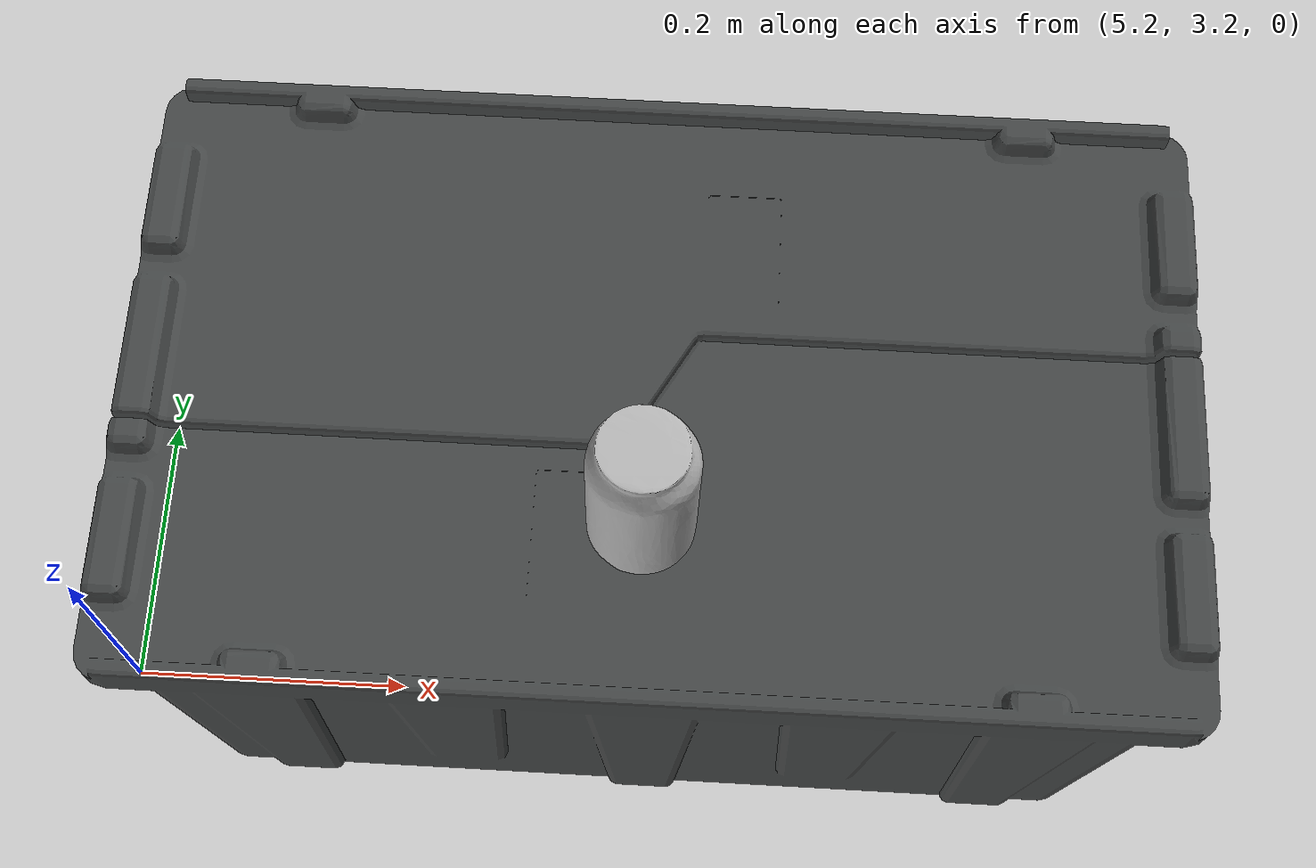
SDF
<sdf version="1.6">
 <world name="default">
  <light name="sun" type="directional">
   <pose>0 0 10 0 -0 0</pose>
   <diffuse>0.8 0.8 0.8 1</diffuse>
   <specular>0.2 0.2 0.2 1</specular>
   <attenuation>
    <range>1000</range>
    <constant>0.9</constant>
    <linear>0.01</linear>
    <quadratic>0.001</quadratic>
   </attenuation>
   <direction>-0.5 0.1 -0.9</direction>
  </light>
  <model name="ground_plane">
   <static>1</static>
   <link name="link">
    <collision name="collision">
     <geometry><plane><normal>0 0 1</normal><size>100 100</size></plane></geometry>
     <surface>
      <contact><collide_bitmask>65535</collide_bitmask></contact>
      <friction><ode><mu>100</mu><mu2>50</mu2></ode></friction>
     </surface>
    </collision>
    <visual name="visual">
     <cast_shadows>0</cast_shadows>
     <geometry><plane><normal>0 0 1</normal><size>100 100</size></plane></geometry>
     <material>
      <script><uri>file://media/materials/scripts/gazebo.material</uri><name>Gazebo/Grey</name></script>
     </material>
    </visual>
   </link>
  </model>
  <gravity>0 0 -9.8</gravity>
  <magnetic_field>6e-06 2.3e-05 -4.2e-05</magnetic_field>
  <atmosphere type="adiabatic"/>
  <physics name="default_physics" default="0" type="ode">
   <max_step_size>0.001</max_step_size>
   <real_time_factor>1</real_time_factor>
   <real_time_update_rate>1000</real_time_update_rate>
  </physics>
  <scene><ambient>0.4 0.4 0.4 1</ambient><background>0.7 0.7 0.7 1</background><shadows>1</shadows></scene>
  <audio><device>default</device></audio>
  <spherical_coordinates>
   <surface_model>EARTH_WGS84</surface_model>
   <latitude_deg>0</latitude_deg>
   <longitude_deg>0</longitude_deg>
   <elevation>0</elevation>
   <heading_deg>0</heading_deg>
  </spherical_coordinates>
  <model name="grey_tote">
   <link name="link">
    <inertial>
     <pose>0 0 0.14155 0 -0 0</pose>
     <mass>3.53802</mass>
     <inertia>
      <ixx>0.0688358</ixx>
      <ixy>0</ixy>
      <ixz>0</ixz>
      <iyy>0.139596</iyy>
      <iyz>0</iyz>
      <izz>0.155909</izz>
     </inertia>
    </inertial>
    <collision name="lid">
     <pose>0 0 0.28958 0 -0 0</pose>
     <geometry><box><size>0.67768 0.41298 0.01588</size></box></geometry>
    </collision>
    <collision name="lid_lip_1">
     <pose>0 0.20063 0.3048 0 -0 0</pose>
     <geometry><box><size>0.65068 0.0105 0.0127</size></box></geometry>
    </collision>
    <collision name="lid_lip_2">
     <pose>0 -0.20063 0.3048 0 -0 0</pose>
     <geometry><box><size>0.65068 0.0105 0.0127</size></box></geometry>
    </collision>
    <collision name="lid_lip_3">
     <pose>0.32585 0 0.3048 0 -0 0</pose>
     <geometry><box><size>0.02602 0.31202 0.0127</size></box></geometry>
    </collision>
    <collision name="lid_lip_4">
     <pose>-0.32585 0 0.3048 0 -0 0</pose>
     <geometry><box><size>0.02602 0.31202 0.0127</size></box></geometry>
    </collision>
    <collision name="side_wall_1">
     <pose>0 -0.18 0.14155 0.061147 -0 0</pose>
     <geometry><box><size>0.58404 0.02602 0.283099</size></box></geometry>
    </collision>
    <collision name="side_wall_2">
     <pose>0 0.18 0.14155 -0.061147 0 0</pose>
     <geometry><box><size>0.58404 0.02602 0.283099</size></box></geometry>
    </collision>
    <collision name="side_wall_3">
     <pose>0.305 0 0.14155 0 0.061147 0</pose>
     <geometry><box><size>0.02602 0.33046 0.283099</size></box></geometry>
    </collision>
    <collision name="side_wall_4">
     <pose>-0.305 0 0.14155 0 -0.061147 0</pose>
     <geometry><box><size>0.02602 0.33046 0.283099</size></box></geometry>
    </collision>
    <collision name="bottom">
     <pose>0 0 0.01 0 -0 0</pose>
     <geometry><box><size>0.58404 0.33046 0.02</size></box></geometry>
    </collision>
    <collision name="corner_1">
     <pose>0.30202 -0.175 0.14155 0.061147 0.061147 -0</pose>
     <geometry><cylinder><radius>0.01268</radius><length>0.283099</length></cylinder></geometry>
    </collision>
    <collision name="corner_2">
     <pose>-0.30202 -0.175 0.14155 0.061147 -0.061147 0</pose>
     <geometry><cylinder><radius>0.01268</radius><length>0.283099</length></cylinder></geometry>
    </collision>
    <collision name="corner_3">
     <pose>-0.30202 0.175 0.14155 -0.061147 -0.061147 -0</pose>
     <geometry><cylinder><radius>0.01268</radius><length>0.283099</length></cylinder></geometry>
    </collision>
    <collision name="corner_4">
     <pose>0.30202 0.175 0.14155 -0.061147 0.061147 0</pose>
     <geometry><cylinder><radius>0.01268</radius><length>0.283099</length></cylinder></geometry>
    </collision>
    <visual name="visual"><geometry><mesh><uri>model://grey_tote/meshes/tote.dae</uri></mesh></geometry></visual>
   </link>
   <pose>5.58138 3.3186 0.000559 1.5e-05 -1.4e-05 -6.2e-05</pose>
  </model>
  <model name="coke_can">
   <link name="coke_can::coke_can::link">
    <inertial>
     <pose>0 0 0.06 0 -0 0</pose>
     <mass>0.39</mass>
     <inertia>
      <ixx>0.00055575</ixx>
      <ixy>0</ixy>
      <ixz>0</ixz>
      <iyy>0.00055575</iyy>
      <iyz>0</iyz>
      <izz>0.0001755</izz>
     </inertia>
    </inertial>
    <collision name="collision">
     <pose>0.003937 0.004724 -0.18 0 -0 0</pose>
     <geometry><mesh><uri>model://coke_can/meshes/coke_can.dae</uri></mesh></geometry>
     <surface>
      <friction><ode><mu>1</mu><mu2>1</mu2></ode></friction>
      <contact><ode><kp>1e+07</kp><kd>1</kd><min_depth>0.001</min_depth><max_vel>0.1</max_vel></ode></contact>
     </surface>
    </collision>
    <visual name="visual">
     <pose>0.003937 0.004724 -0.18 0 -0 0</pose>
     <geometry><mesh><uri>model://coke_can/meshes/coke_can.dae</uri></mesh></geometry>
    </visual>
   </link>
   <pose>5.57559 3.22755 0.29551 -0.011279 0.003976 -0.001773</pose>
  </model>
 </world>
</sdf>
